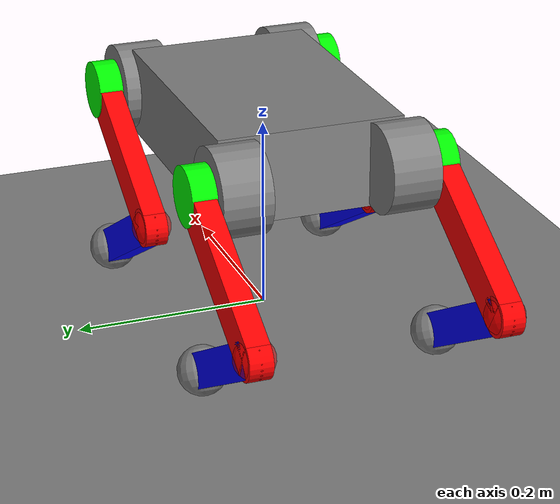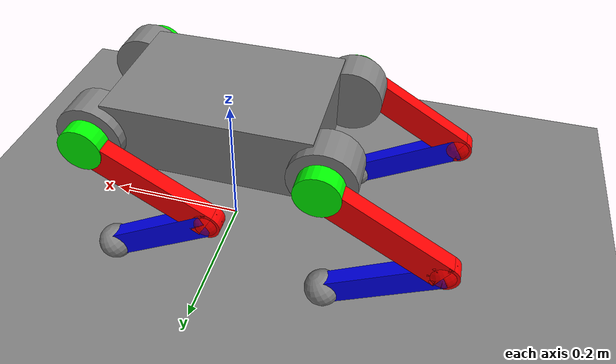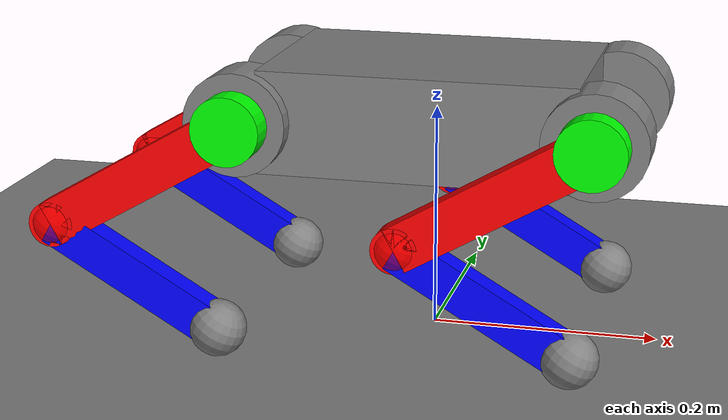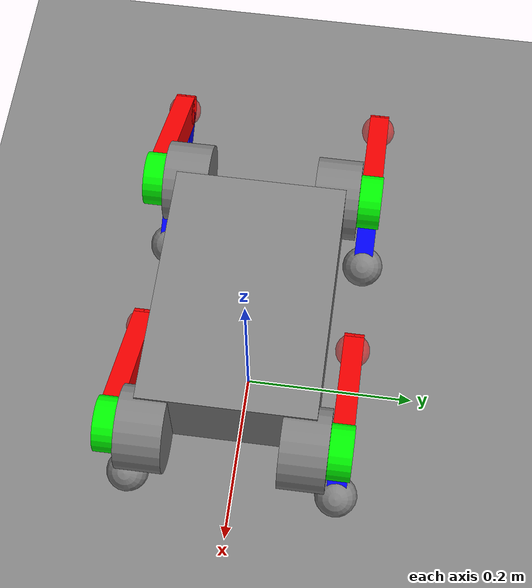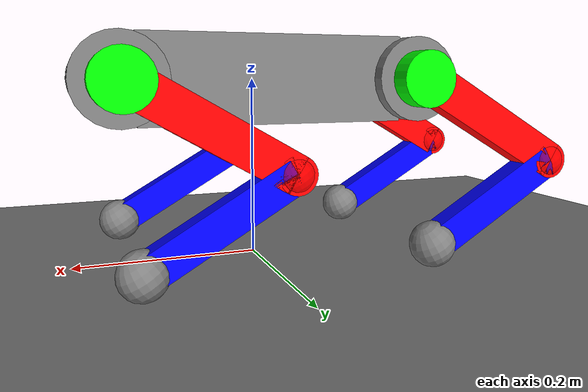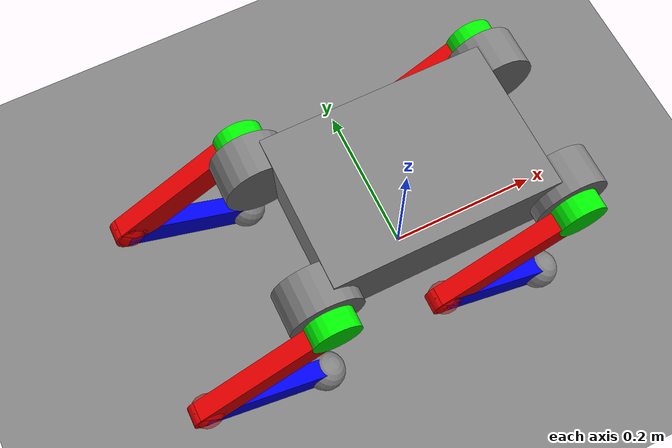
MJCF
<mujoco model="quadruped">
    <compiler angle="radian" autolimits="true" inertiafromgeom="true"/>

    <option gravity="0 0 -9.81"/>

    <size nstack="3000"/>

    <custom>
        <numeric data="10000" name="constraint_stiffness"/>
        <numeric data="10000" name="constraint_limit_stiffness"/>
        <numeric data="10" name="constraint_ang_damping"/>
        <numeric data="50" name="constraint_vel_damping"/>
        <numeric data="0" name="ang_damping"/>
        <numeric data="0" name="spring_mass_scale"/>
        <numeric data="1" name="spring_inertia_scale"/>
        <numeric data="10" name="matrix_inv_iterations"/>
        <numeric data="10" name="solver_maxls"/>
    </custom>

    <default>
        <default class="collision">
            <geom contype="1" conaffinity="1" group="1"/>
        </default>
        <default class="visual">
            <geom contype="0" conaffinity="0" group="2"/>
        </default>
        <default class="motors">
            <general gaintype="fixed" biastype="affine" ctrlrange="-2.0 2.0" gainprm="5" biasprm="0 0 0" gear="1 0 0 0 0 0" forcerange="-33.5 33.5"/>
        </default>
    </default>

    <worldbody>
        <light name="spotlight" mode="targetbodycom" target="base" pos="0 -1 2"/>
        <geom name="floor" size="0 0 0.05" type="plane"/>
        <body name="base" pos="0 0 0.2">
            <freejoint/>
            <geom type="box" size="0.1375 0.095 0.045" pos="0 0 0" quat="1 0 0 0"/>
            <!-- HIP: r=0.45 l=0.5 extended in the y-direction by an extra: 0.015 -->
            <geom class="visual" type="cylinder" size="0.045 0.025" pos="0.1525 0.085 0" quat="1 1 0 0"/>
            <geom class="visual" type="cylinder" size="0.045 0.025" pos="0.1525 -0.085 0" quat="1 1 0 0"/>
            <geom class="visual" type="cylinder" size="0.045 0.025" pos="-0.1525 -0.085 0" quat="1 1 0 0"/>
            <geom class="visual" type="cylinder" size="0.045 0.025" pos="-0.1525 0.085 0" quat="1 1 0 0"/>
            <body name="front_left_leg" pos="0.1525 0.1225 0" quat="0.258819 0 0.9659258 0">
                <joint type="hinge" axis="0 1 0" pos="0 0 0" range="-1.57 1.57" limited="true" name="front_left_hip_joint"/>
                <geom class="visual" type="cylinder" size="0.03 0.0125" pos="0 0 0" quat="1 1 0 0" rgba="0 1 0 1"/>
                <body name="front_left_thigh" pos="0 0 0">
                    <geom class="visual" type="box" size="0.0925 0.02 0.0115" pos="0.0925 0 0" quat="1 1 0 0" rgba="1 0 0 1"/>
                    <geom class="visual" type="cylinder" size="0.02 0.0115" pos="0.185 0 0" quat="1 1 0 0" rgba="1 0 0 1"/>
                    <body name="front_left_knee" pos="0.185 0 0" quat="0.5 0 -0.8660254 0">
                        <joint type="hinge" axis="0 1 0" pos="0 0 0" range="-0.57 1.91" limited="true" name="front_left_knee_joint"/>
                        <geom class="collision" type="sphere" size="0.02" pos="0 0 0" rgba="1 0 0 0.5"/>
                        <body name="front_left_calf" pos="0 0 0">
                            <geom class="visual" type="box" size="0.085 0.0175 0.0115" pos="0.085 0 0" quat="1 1 0 0" rgba="0 0 1 1"/>
                            <geom class="visual" type="cylinder" size="0.0175 0.0115" pos="0.17 0 0" quat="1 1 0 0" rgba="0 0 1 1"/>
                            <body name="front_left_foot" pos="0.17 0 0">
                                <geom class="collision" type="sphere" size="0.025" pos="0 0 0" friction="1 0.005 0.0001"/>
                            </body>
                        </body>
                    </body>
                </body>
            </body>
            <body name="front_right_leg" pos="0.1525 -0.1225 0" quat="0.258819 0 0.9659258 0">
                <joint type="hinge" axis="0 1 0" pos="0 0 0" range="-1.57 1.57" limited="true" name="front_right_hip_joint"/>
                <geom class="visual" type="cylinder" size="0.03 0.0125" pos="0 0 0" quat="1 1 0 0" rgba="0 1 0 1"/>
                <body name="front_right_thigh" pos="0 0 0">
                    <geom class="visual" type="box" size="0.0925 0.02 0.0115" pos="0.0925 0 0" quat="1 1 0 0" rgba="1 0 0 1"/>
                    <geom class="visual" type="cylinder" size="0.02 0.0115" pos="0.185 0 0" quat="1 1 0 0" rgba="1 0 0 1"/>
                    <body name="front_right_knee" pos="0.185 0 0" quat="0.5 0 -0.8660254 0">
                        <joint type="hinge" axis="0 1 0" pos="0 0 0"  range="-0.57 1.91" limited="true" name="front_right_knee_joint"/>
                        <geom class="collision" type="sphere" size="0.02" pos="0 0 0" rgba="1 0 0 0.5"/>
                        <body name="front_right_calf" pos="0 0 0">
                            <geom class="visual" type="box" size="0.085 0.0175 0.0115" pos="0.085 0 0" quat="1 1 0 0" rgba="0 0 1 1"/>
                            <geom class="visual" type="cylinder" size="0.0175 0.0115" pos="0.17 0 0" quat="1 1 0 0" rgba="0 0 1 1"/>
                            <body name="front_right_foot" pos="0.17 0 0">
                                <geom class="collision" type="sphere" size="0.025" pos="0 0 0" friction="1 0.005 0.0001"/>
                            </body>
                        </body>
                    </body>
                </body>
            </body>
            <body name="back_left_leg" pos="-0.1525 0.1225 0" quat="0.258819 0 0.9659258 0">
                <joint type="hinge" axis="0 1 0" pos="0 0 0" range="-1.57 1.57" limited="true" name="back_left_hip_joint"/>
                <geom class="visual" type="cylinder" size="0.03 0.0125" pos="0 0 0" quat="1 1 0 0" rgba="0 1 0 1"/>
                <body name="back_left_thigh" pos="0 0 0">
                    <geom class="visual" type="box" size="0.0925 0.02 0.0115" pos="0.0925 0 0" quat="1 1 0 0" rgba="1 0 0 1"/>
                    <geom class="visual" type="cylinder" size="0.02 0.0115" pos="0.185 0 0" quat="1 1 0 0" rgba="1 0 0 1"/>
                    <body name="back_left_knee" pos="0.185 0 0" quat="0.5 0 -0.8660254 0">
                        <joint type="hinge" axis="0 1 0" pos="0 0 0" range="-0.57 1.91" limited="true" name="back_left_knee_joint"/>
                        <geom class="collision" type="sphere" size="0.02" pos="0 0 0" rgba="1 0 0 0.5"/>
                        <body name="back_left_calf" pos="0 0 0">
                            <geom class="visual" type="box" size="0.085 0.0175 0.0115" pos="0.085 0 0" quat="1 1 0 0" rgba="0 0 1 1"/>
                            <geom class="visual" type="cylinder" size="0.0175 0.0115" pos="0.17 0 0" quat="1 1 0 0" rgba="0 0 1 1"/>
                            <body name="back_left_foot" pos="0.17 0 0">
                                <geom class="collision" type="sphere" size="0.025" pos="0 0 0" friction="1 0.005 0.0001"/>
                            </body>
                        </body>
                    </body>
                </body>
            </body>
            <body name="back_right_leg" pos="-0.1525 -0.1225 0" quat="0.258819 0 0.9659258 0">
                <joint type="hinge" axis="0 1 0" pos="0 0 0" range="-1.57 1.57" limited="true" name="back_right_hip_joint"/>
                <geom class="visual" type="cylinder" size="0.03 0.0125" pos="0 0 0" quat="1 1 0 0" rgba="0 1 0 1"/>
                <body name="back_right_thigh" pos="0 0 0">
                    <geom class="visual" type="box" size="0.0925 0.02 0.0115" pos="0.0925 0 0" quat="1 1 0 0" rgba="1 0 0 1"/>
                    <geom class="visual" type="cylinder" size="0.02 0.0115" pos="0.185 0 0" quat="1 1 0 0" rgba="1 0 0 1"/>
                    <body name="back_right_knee" pos="0.185 0 0" quat="0.5 0 -0.8660254 0">
                        <joint type="hinge" axis="0 1 0" pos="0 0 0" range="-0.57 1.91" limited="true" name="back_right_knee_joint"/>
                        <geom class="collision" type="sphere" size="0.02" pos="0 0 0" rgba="1 0 0 0.5"/>
                        <body name="back_right_calf" pos="0 0 0">
                            <geom class="visual" type="box" size="0.085 0.0175 0.0115" pos="0.085 0 0" quat="1 1 0 0" rgba="0 0 1 1"/>
                            <geom class="visual" type="cylinder" size="0.0175 0.0115" pos="0.17 0 0" quat="1 1 0 0" rgba="0 0 1 1"/>
                            <body name="back_right_foot" pos="0.17 0 0">
                                <geom class="collision" type="sphere" size="0.025" pos="0 0 0" friction="1 0.005 0.0001"/>
                            </body>
                        </body>
                    </body>
                </body>
            </body>
        </body>
    </worldbody>

    <actuator>
        <general class="motors" name="front_left_hip_motor" joint="front_left_hip_joint"/>
        <general class="motors" name="front_right_hip_motor" joint="front_right_hip_joint"/>
        <general class="motors" name="front_left_knee_motor" joint="front_left_knee_joint"/>
        <general class="motors" name="front_right_knee_motor" joint="front_right_knee_joint"/>
        <general class="motors" name="back_left_hip_motor" joint="back_left_hip_joint"/>
        <general class="motors" name="back_right_hip_motor" joint="back_right_hip_joint"/>
        <general class="motors" name="back_left_knee_motor" joint="back_left_knee_joint"/>
        <general class="motors" name="back_right_knee_motor" joint="back_right_knee_joint"/>
    </actuator>

</mujoco>
